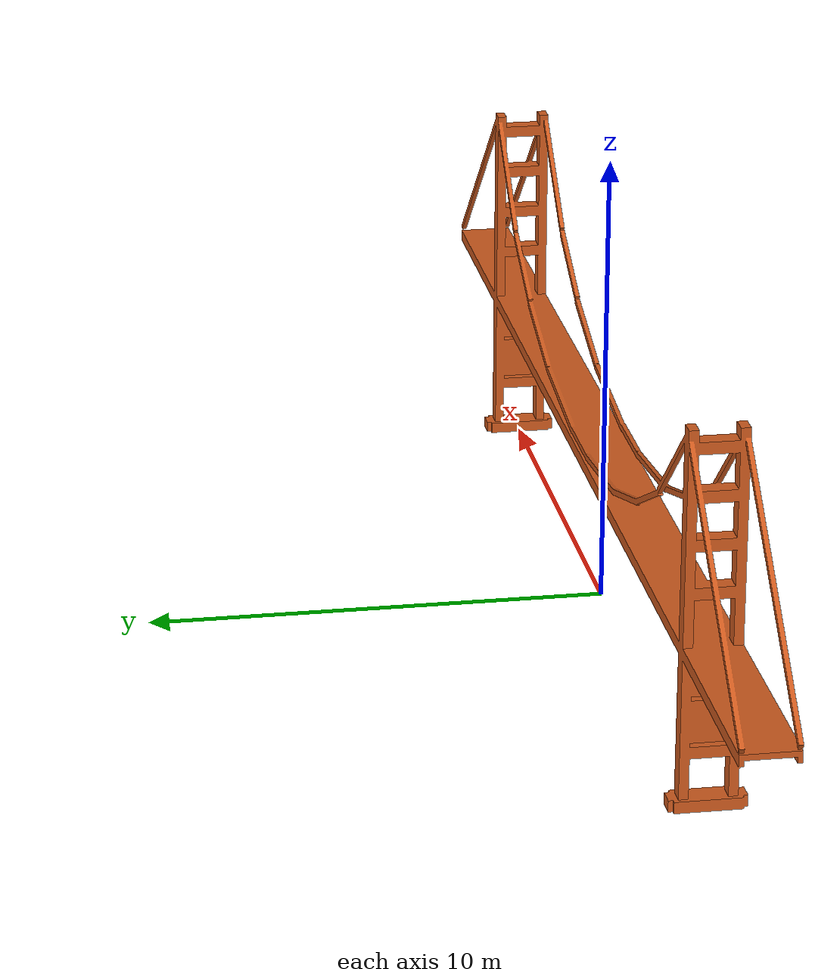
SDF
<?xml version="1.0"?>
<sdf version="1.6">
  <model name="f250_golden_gate_bridge_matthew_zirkle_visual">
    <static>true</static>
    <link name="visual_link">
      <visual name="golden_gate_bridge_matthew_zirkle_visual">
        <geometry>
          <mesh>
            <uri>model://f250_golden_gate_bridge_matthew_zirkle_visual/meshes/golden_gate_bridge_matthew_zirkle_materialized.obj</uri>
          </mesh>
        </geometry>
        <material>
          <ambient>0.82 0.36 0.12 1.0</ambient>
          <diffuse>0.82 0.36 0.12 1.0</diffuse>
          <specular>0.12 0.12 0.12 1.0</specular>
        </material>
      </visual>
    </link>
  </model>
</sdf>
